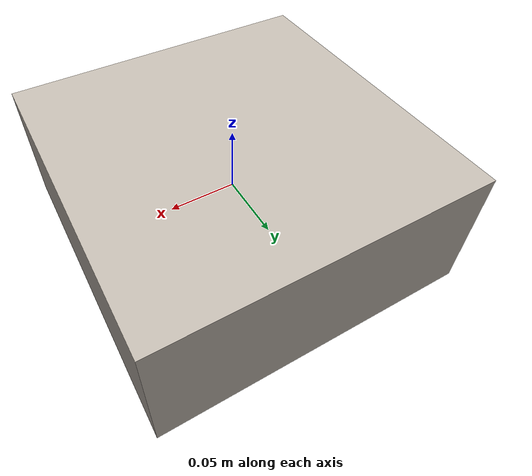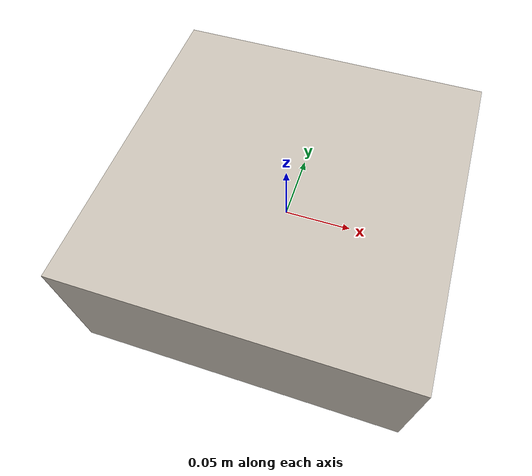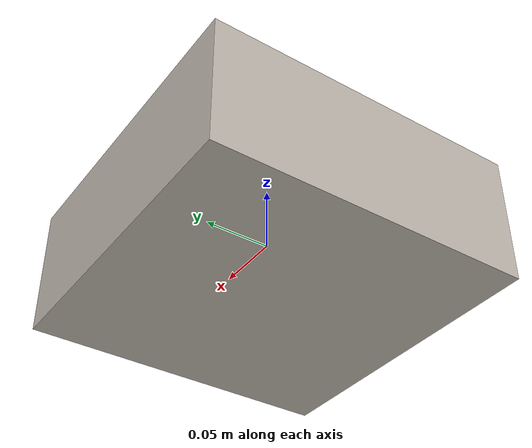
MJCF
<mujoco model="vla82_vla82_007">
  <compiler angle="radian"/>
  <asset>
    <texture name="source_texture" type="2d" file="source_texture.png"/>
    <material name="source_material" texture="source_texture" rgba="1 1 1 1"/>
  </asset>
  <default>
    <default class="visual"><geom contype="0" conaffinity="0" group="1"/></default>
    <default class="collision"><geom contype="1" conaffinity="1" group="0" density="300" friction="0.95 0.3 0.1"/></default>
    <default class="region"><geom contype="0" conaffinity="0" group="1" rgba="0 1 0 0" mass="0"/></default>
  </default>
  <worldbody><body><body name="object">
    <geom name="visual" class="visual" type="box" size="0.120000 0.120000 0.050000" material="source_material"/>
    <geom name="collision" class="collision" type="box" size="0.120000 0.120000 0.050000"/>
    <geom name="reg_bbox" class="region" type="box" pos="0 0 0" size="0.120000 0.120000 0.050000"/>
  </body></body></worldbody>
  <actuator/>
</mujoco>
